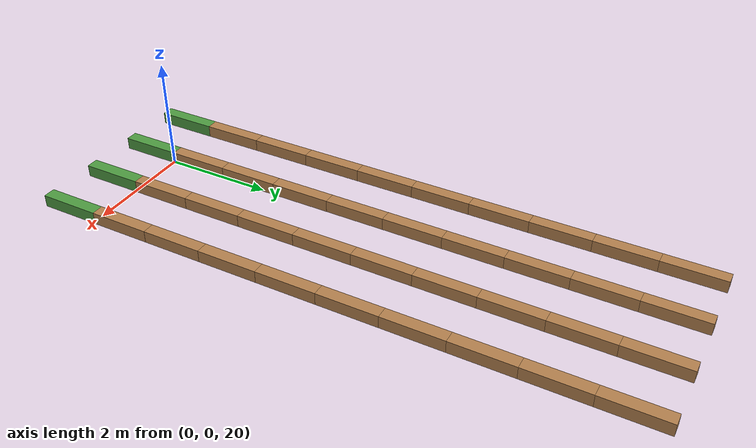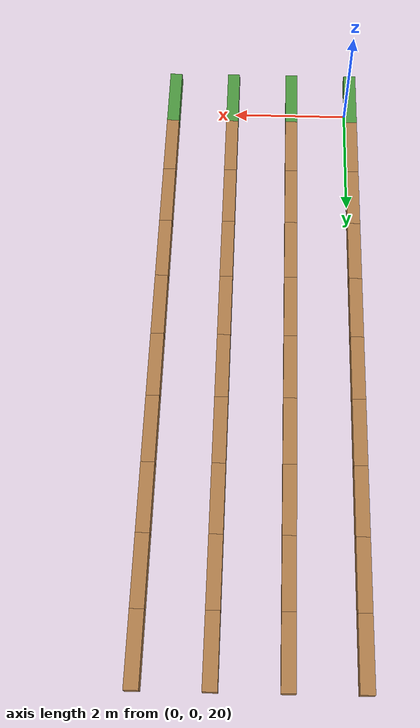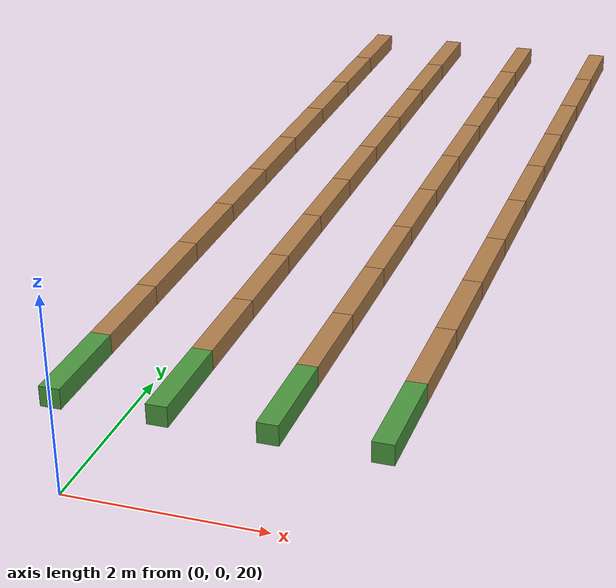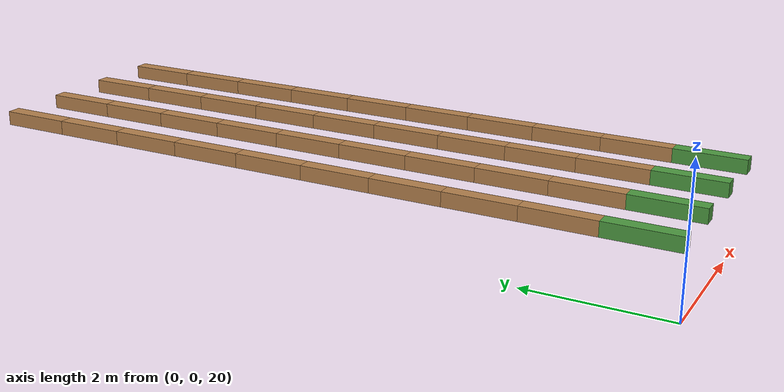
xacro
<?xml version="1.0"?>
<robot name="continuous_pendulum"
       xmlns:xi="http://www.w3.org/2001/XInclude"
       xmlns:gazebo="http://playerstage.sourceforge.net/gazebo/xmlschema/#gz"
       xmlns:model="http://playerstage.sourceforge.net/gazebo/xmlschema/#model"
       xmlns:sensor="http://playerstage.sourceforge.net/gazebo/xmlschema/#sensor"
       xmlns:body="http://playerstage.sourceforge.net/gazebo/xmlschema/#body"
       xmlns:geom="http://playerstage.sourceforge.net/gazebo/xmlschema/#geom"
       xmlns:joint="http://playerstage.sourceforge.net/gazebo/xmlschema/#joint"
       xmlns:interface="http://playerstage.sourceforge.net/gazebo/xmlschema/#interface"
       xmlns:rendering="http://playerstage.sourceforge.net/gazebo/xmlschema/#rendering"
       xmlns:renderable="http://playerstage.sourceforge.net/gazebo/xmlschema/#renderable"
       xmlns:controller="http://playerstage.sourceforge.net/gazebo/xmlschema/#controller"
       xmlns:xacro="http://ros.org/wiki/xacro"
       xmlns:physics="http://playerstage.sourceforge.net/gazebo/xmlschema/#physics">

  <!--
     A pendulum constructed from single continuous link and a mass with some moment of inertia
  -->
  <xacro:macro name="one_link" params="link_name parent *axis *origin material">
    <joint name="${link_name}_joint" type="continuous" >
      <insert_block name="origin"/>
      <insert_block name="axis"/>
      <parent link="${parent}" />
      <child link="${link_name}" />
      <dynamics damping="0.0" />
    </joint>
    <link name="${link_name}">
      <inertial >
        <mass value="1.0" />
        <origin xyz="0 1 0" />
        <inertia  ixx="0.0" ixy="0.0"  ixz="0.0"  iyy="0.0"  iyz="0.0"  izz="0.0" />
      </inertial>
      <visual >
        <origin xyz="0 0.5 0" rpy="0 0 0" />
        <geometry>
          <box size="0.2 1.0 0.2" />
        </geometry>
      </visual>
      <collision >
        <origin xyz="0 0.5 0" rpy="0 0 0" />
        <geometry>
          <box size="0.2 1.0 0.2" />
        </geometry>
      </collision>
    </link>
    <gazebo reference="${link_name}">
      <material>${material}</material>
      <turnGravityOff>false</turnGravityOff>
      <transmission type="SimpleTransmission" name="${link_name}_trans">
        <actuator name="${link_name}_motor" />
        <joint name="${link_name}_joint" />
        <mechanicalReduction>1</mechanicalReduction>
        <motorTorqueConstant>1</motorTorqueConstant>
      </transmission>
    </gazebo>
  </xacro:macro>

  <link name="world"/>
  <xacro:one_link link_name="link1_1" parent="world" material="Gazebo/GrassFloor">
    <origin xyz="0 0 21" rpy="0 0 0"/>
    <axis xyz="1 0 0" />
  </xacro:one_link>
  <xacro:one_link link_name="link2_1" parent="link1_1" material="Gazebo/LightWood">
    <origin xyz="0 1 0" rpy="0 0 0"/>
    <axis xyz="1 0 0" />
  </xacro:one_link>
  <xacro:one_link link_name="link3_1" parent="link2_1" material="Gazebo/LightWood">
    <origin xyz="0 1 0" rpy="0 0 0"/>
    <axis xyz="1 0 0" />
  </xacro:one_link>
  <xacro:one_link link_name="link4_1" parent="link3_1" material="Gazebo/LightWood">
    <origin xyz="0 1 0" rpy="0 0 0"/>
    <axis xyz="1 0 0" />
  </xacro:one_link>
  <xacro:one_link link_name="link5_1" parent="link4_1" material="Gazebo/LightWood">
    <origin xyz="0 1 0" rpy="0 0 0"/>
    <axis xyz="1 0 0" />
  </xacro:one_link>
  <xacro:one_link link_name="link6_1" parent="link5_1" material="Gazebo/LightWood">
    <origin xyz="0 1 0" rpy="0 0 0"/>
    <axis xyz="1 0 0" />
  </xacro:one_link>
  <xacro:one_link link_name="link7_1" parent="link6_1" material="Gazebo/LightWood">
    <origin xyz="0 1 0" rpy="0 0 0"/>
    <axis xyz="1 0 0" />
  </xacro:one_link>
  <xacro:one_link link_name="link8_1" parent="link7_1" material="Gazebo/LightWood">
    <origin xyz="0 1 0" rpy="0 0 0"/>
    <axis xyz="1 0 0" />
  </xacro:one_link>
  <xacro:one_link link_name="link9_1" parent="link8_1" material="Gazebo/LightWood">
    <origin xyz="0 1 0" rpy="0 0 0"/>
    <axis xyz="1 0 0" />
  </xacro:one_link>
  <xacro:one_link link_name="link10_1" parent="link9_1" material="Gazebo/LightWood">
    <origin xyz="0 1 0" rpy="0 0 0"/>
    <axis xyz="1 0 0" />
  </xacro:one_link>

  <xacro:one_link link_name="link1_2" parent="world" material="Gazebo/GrassFloor">
    <origin xyz="1 0 21" rpy="0 0 0"/>
    <axis xyz="1 0 0" />
  </xacro:one_link>
  <xacro:one_link link_name="link2_2" parent="link1_2" material="Gazebo/LightWood">
    <origin xyz="0 1 0" rpy="0 0 0"/>
    <axis xyz="1 0 0" />
  </xacro:one_link>
  <xacro:one_link link_name="link3_2" parent="link2_2" material="Gazebo/LightWood">
    <origin xyz="0 1 0" rpy="0 0 0"/>
    <axis xyz="1 0 0" />
  </xacro:one_link>
  <xacro:one_link link_name="link4_2" parent="link3_2" material="Gazebo/LightWood">
    <origin xyz="0 1 0" rpy="0 0 0"/>
    <axis xyz="1 0 0" />
  </xacro:one_link>
  <xacro:one_link link_name="link5_2" parent="link4_2" material="Gazebo/LightWood">
    <origin xyz="0 1 0" rpy="0 0 0"/>
    <axis xyz="1 0 0" />
  </xacro:one_link>
  <xacro:one_link link_name="link6_2" parent="link5_2" material="Gazebo/LightWood">
    <origin xyz="0 1 0" rpy="0 0 0"/>
    <axis xyz="1 0 0" />
  </xacro:one_link>
  <xacro:one_link link_name="link7_2" parent="link6_2" material="Gazebo/LightWood">
    <origin xyz="0 1 0" rpy="0 0 0"/>
    <axis xyz="1 0 0" />
  </xacro:one_link>
  <xacro:one_link link_name="link8_2" parent="link7_2" material="Gazebo/LightWood">
    <origin xyz="0 1 0" rpy="0 0 0"/>
    <axis xyz="1 0 0" />
  </xacro:one_link>
  <xacro:one_link link_name="link9_2" parent="link8_2" material="Gazebo/LightWood">
    <origin xyz="0 1 0" rpy="0 0 0"/>
    <axis xyz="1 0 0" />
  </xacro:one_link>
  <xacro:one_link link_name="link10_2" parent="link9_2" material="Gazebo/LightWood">
    <origin xyz="0 1 0" rpy="0 0 0"/>
    <axis xyz="1 0 0" />
  </xacro:one_link>

  <xacro:one_link link_name="link1_3" parent="world" material="Gazebo/GrassFloor">
    <origin xyz="2 0 21" rpy="0 0 0"/>
    <axis xyz="1 0 0" />
  </xacro:one_link>
  <xacro:one_link link_name="link2_3" parent="link1_3" material="Gazebo/LightWood">
    <origin xyz="0 1 0" rpy="0 0 0"/>
    <axis xyz="1 0 0" />
  </xacro:one_link>
  <xacro:one_link link_name="link3_3" parent="link2_3" material="Gazebo/LightWood">
    <origin xyz="0 1 0" rpy="0 0 0"/>
    <axis xyz="1 0 0" />
  </xacro:one_link>
  <xacro:one_link link_name="link4_3" parent="link3_3" material="Gazebo/LightWood">
    <origin xyz="0 1 0" rpy="0 0 0"/>
    <axis xyz="1 0 0" />
  </xacro:one_link>
  <xacro:one_link link_name="link5_3" parent="link4_3" material="Gazebo/LightWood">
    <origin xyz="0 1 0" rpy="0 0 0"/>
    <axis xyz="1 0 0" />
  </xacro:one_link>
  <xacro:one_link link_name="link6_3" parent="link5_3" material="Gazebo/LightWood">
    <origin xyz="0 1 0" rpy="0 0 0"/>
    <axis xyz="1 0 0" />
  </xacro:one_link>
  <xacro:one_link link_name="link7_3" parent="link6_3" material="Gazebo/LightWood">
    <origin xyz="0 1 0" rpy="0 0 0"/>
    <axis xyz="1 0 0" />
  </xacro:one_link>
  <xacro:one_link link_name="link8_3" parent="link7_3" material="Gazebo/LightWood">
    <origin xyz="0 1 0" rpy="0 0 0"/>
    <axis xyz="1 0 0" />
  </xacro:one_link>
  <xacro:one_link link_name="link9_3" parent="link8_3" material="Gazebo/LightWood">
    <origin xyz="0 1 0" rpy="0 0 0"/>
    <axis xyz="1 0 0" />
  </xacro:one_link>
  <xacro:one_link link_name="link10_3" parent="link9_3" material="Gazebo/LightWood">
    <origin xyz="0 1 0" rpy="0 0 0"/>
    <axis xyz="1 0 0" />
  </xacro:one_link>

  <xacro:one_link link_name="link1_4" parent="world" material="Gazebo/GrassFloor">
    <origin xyz="3 0 21" rpy="0 0 0"/>
    <axis xyz="1 0 0" />
  </xacro:one_link>
  <xacro:one_link link_name="link2_4" parent="link1_4" material="Gazebo/LightWood">
    <origin xyz="0 1 0" rpy="0 0 0"/>
    <axis xyz="1 0 0" />
  </xacro:one_link>
  <xacro:one_link link_name="link3_4" parent="link2_4" material="Gazebo/LightWood">
    <origin xyz="0 1 0" rpy="0 0 0"/>
    <axis xyz="1 0 0" />
  </xacro:one_link>
  <xacro:one_link link_name="link4_4" parent="link3_4" material="Gazebo/LightWood">
    <origin xyz="0 1 0" rpy="0 0 0"/>
    <axis xyz="1 0 0" />
  </xacro:one_link>
  <xacro:one_link link_name="link5_4" parent="link4_4" material="Gazebo/LightWood">
    <origin xyz="0 1 0" rpy="0 0 0"/>
    <axis xyz="1 0 0" />
  </xacro:one_link>
  <xacro:one_link link_name="link6_4" parent="link5_4" material="Gazebo/LightWood">
    <origin xyz="0 1 0" rpy="0 0 0"/>
    <axis xyz="1 0 0" />
  </xacro:one_link>
  <xacro:one_link link_name="link7_4" parent="link6_4" material="Gazebo/LightWood">
    <origin xyz="0 1 0" rpy="0 0 0"/>
    <axis xyz="1 0 0" />
  </xacro:one_link>
  <xacro:one_link link_name="link8_4" parent="link7_4" material="Gazebo/LightWood">
    <origin xyz="0 1 0" rpy="0 0 0"/>
    <axis xyz="1 0 0" />
  </xacro:one_link>
  <xacro:one_link link_name="link9_4" parent="link8_4" material="Gazebo/LightWood">
    <origin xyz="0 1 0" rpy="0 0 0"/>
    <axis xyz="1 0 0" />
  </xacro:one_link>
  <xacro:one_link link_name="link10_4" parent="link9_4" material="Gazebo/LightWood">
    <origin xyz="0 1 0" rpy="0 0 0"/>
    <axis xyz="1 0 0" />
  </xacro:one_link>

  <gazebo>
      <!-- PR2_ACTARRAY -->
      <controller:gazebo_ros_controller_manager name="gazebo_ros_controller_manager" plugin="libgazebo_ros_controller_manager.so">
        <alwaysOn>true</alwaysOn>
        <updateRate>1000.0</updateRate>
        <interface:audio name="gazebo_ros_controller_manager_dummy_iface" />
      </controller:gazebo_ros_controller_manager>
  </gazebo>

</robot>
